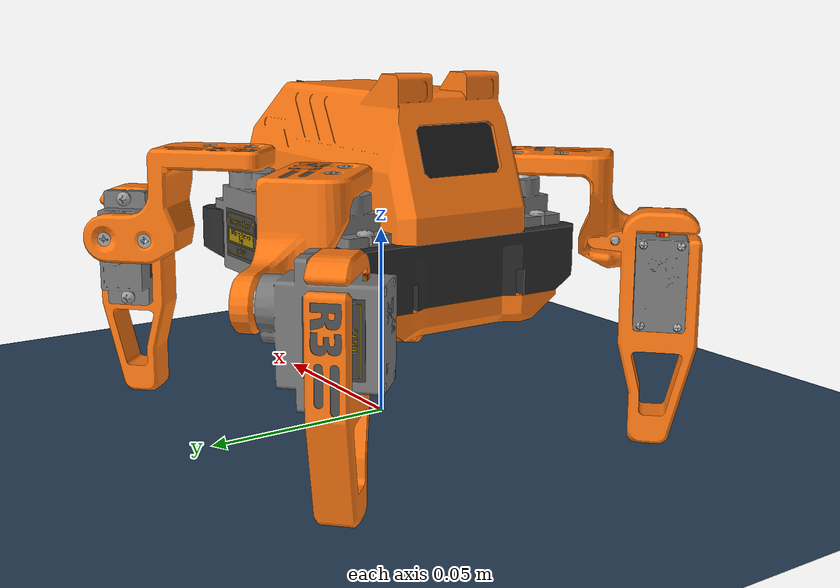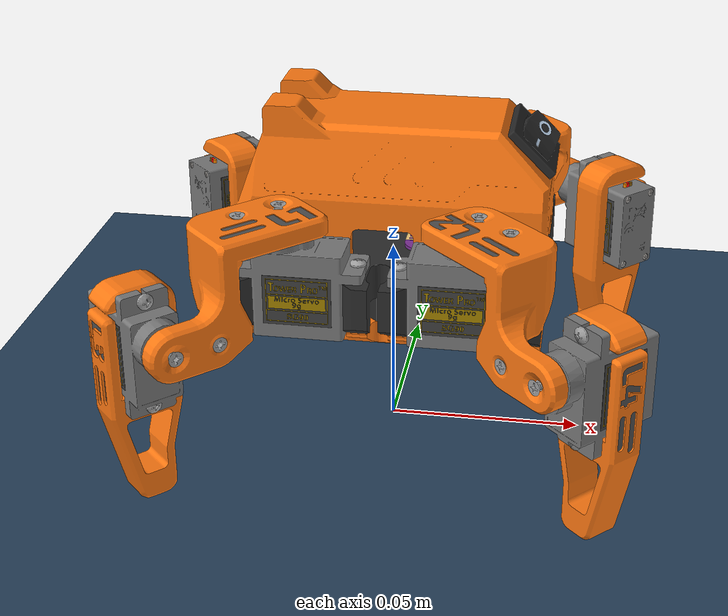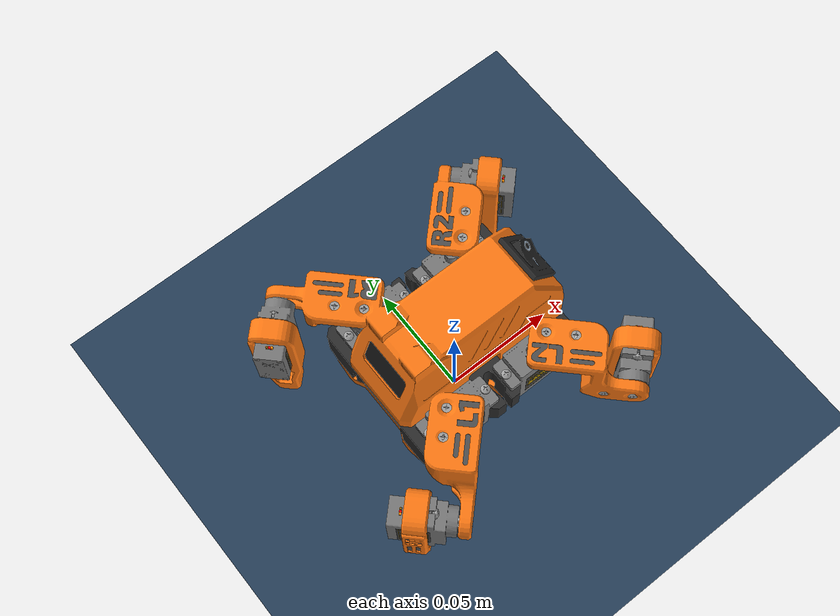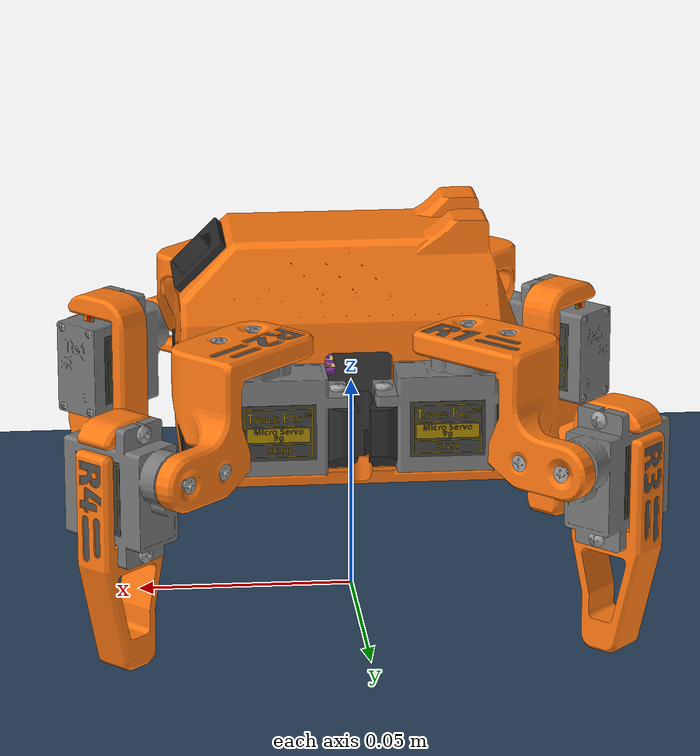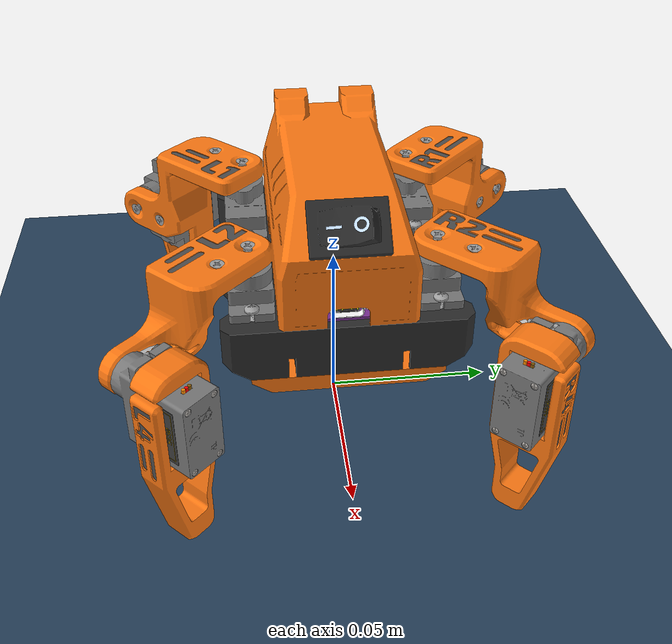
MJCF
<!-- Viewer scene. Meshes are coloured parts of the Sesame STEP tessellation. -->
<mujoco model="scene_viewer_sesame">
  <compiler angle="radian" meshdir="parts"/>
  <visual>
    <headlight diffuse="0.6 0.6 0.6" ambient="0.3 0.3 0.3" specular="0 0 0"/>
    <rgba haze="0.15 0.25 0.35 1"/>
    <global azimuth="160" elevation="-20" offwidth="1600" offheight="1200"/>
  </visual>
  <asset>
    <texture type="skybox" builtin="gradient" rgb1="0.3 0.5 0.7" rgb2="0 0 0" width="512" height="3072"/>
    <texture type="2d" name="groundplane" builtin="checker" mark="edge" rgb1="0.2 0.3 0.4" rgb2="0.1 0.2 0.3" markrgb="0.8 0.8 0.8" width="300" height="300"/>
    <material name="groundplane" texture="groundplane" texuniform="true" texrepeat="5 5" reflectance="0.2"/>
    <mesh name="part_00" inertia="shell" file="part_00.stl"/>
    <mesh name="part_01" inertia="shell" file="part_01.stl"/>
    <mesh name="part_02" inertia="shell" file="part_02.stl"/>
    <mesh name="part_03" inertia="shell" file="part_03.stl"/>
    <mesh name="part_04" inertia="shell" file="part_04.stl"/>
    <mesh name="part_05" inertia="shell" file="part_05.stl"/>
    <mesh name="part_06" inertia="shell" file="part_06.stl"/>
    <mesh name="part_07" inertia="shell" file="part_07.stl"/>
    <mesh name="part_08" inertia="shell" file="part_08.stl"/>
    <mesh name="part_09" inertia="shell" file="part_09.stl"/>
    <mesh name="part_10" inertia="shell" file="part_10.stl"/>
    <mesh name="part_11" inertia="shell" file="part_11.stl"/>
    <mesh name="part_12" inertia="shell" file="part_12.stl"/>
    <mesh name="part_13" inertia="shell" file="part_13.stl"/>
    <mesh name="part_14" inertia="shell" file="part_14.stl"/>
    <mesh name="part_15" inertia="shell" file="part_15.stl"/>
    <mesh name="part_16" inertia="shell" file="part_16.stl"/>
    <mesh name="part_17" inertia="shell" file="part_17.stl"/>
    <mesh name="part_18" inertia="shell" file="part_18.stl"/>
    <mesh name="part_19" inertia="shell" file="part_19.stl"/>
    <mesh name="part_20" inertia="shell" file="part_20.stl"/>
    <mesh name="part_21" inertia="shell" file="part_21.stl"/>
    <mesh name="part_22" inertia="shell" file="part_22.stl"/>
    <mesh name="part_23" inertia="shell" file="part_23.stl"/>
    <mesh name="part_24" inertia="shell" file="part_24.stl"/>
    <mesh name="part_25" inertia="shell" file="part_25.stl"/>
    <mesh name="part_26" inertia="shell" file="part_26.stl"/>
    <mesh name="part_27" inertia="shell" file="part_27.stl"/>
    <mesh name="part_28" inertia="shell" file="part_28.stl"/>
    <mesh name="part_29" inertia="shell" file="part_29.stl"/>
    <mesh name="part_30" inertia="shell" file="part_30.stl"/>
    <mesh name="part_31" inertia="shell" file="part_31.stl"/>
    <mesh name="part_32" inertia="shell" file="part_32.stl"/>
    <mesh name="part_33" inertia="shell" file="part_33.stl"/>
    <mesh name="part_34" inertia="shell" file="part_34.stl"/>
    <mesh name="part_35" inertia="shell" file="part_35.stl"/>
    <mesh name="part_36" inertia="shell" file="part_36.stl"/>
    <mesh name="part_37" inertia="shell" file="part_37.stl"/>
    <mesh name="part_38" inertia="shell" file="part_38.stl"/>
    <mesh name="part_39" inertia="shell" file="part_39.stl"/>
    <mesh name="part_40" inertia="shell" file="part_40.stl"/>
    <mesh name="part_41" inertia="shell" file="part_41.stl"/>
    <mesh name="part_42" inertia="shell" file="part_42.stl"/>
    <mesh name="part_43" inertia="shell" file="part_43.stl"/>
    <mesh name="part_44" inertia="shell" file="part_44.stl"/>
    <mesh name="part_45" inertia="shell" file="part_45.stl"/>
    <mesh name="part_46" inertia="shell" file="part_46.stl"/>
    <mesh name="part_47" inertia="shell" file="part_47.stl"/>
    <mesh name="part_48" inertia="shell" file="part_48.stl"/>
    <mesh name="part_49" inertia="shell" file="part_49.stl"/>
    <mesh name="part_50" inertia="shell" file="part_50.stl"/>
  </asset>
  <worldbody>
    <light pos="0 0 3.5" dir="0 0 -1" directional="true"/>
    <geom name="floor" size="0 0 0.05" type="plane" material="groundplane"/>
    <body name="sesame" pos="-0.0256 0.0024 0.0318" quat="0.707106781187 0.707106781187 0 0">
      <geom type="mesh" mesh="part_00" rgba="0.6275 0.6275 0.6275 1" contype="0" conaffinity="0" group="1"/>
      <geom type="mesh" mesh="part_01" rgba="0.4745 0.4745 0.4745 1" contype="0" conaffinity="0" group="1"/>
      <geom type="mesh" mesh="part_02" rgba="1.0000 1.0000 1.0000 1" contype="0" conaffinity="0" group="1"/>
      <geom type="mesh" mesh="part_03" rgba="1.0000 0.4745 0.0745 1" contype="0" conaffinity="0" group="1"/>
      <geom type="mesh" mesh="part_04" rgba="0.2510 0.2510 0.2510 1" contype="0" conaffinity="0" group="1"/>
      <geom type="mesh" mesh="part_05" rgba="0.6471 0.5176 0.0000 1" contype="0" conaffinity="0" group="1"/>
      <geom type="mesh" mesh="part_06" rgba="0.9647 0.9647 0.9529 1" contype="0" conaffinity="0" group="1"/>
      <geom type="mesh" mesh="part_07" rgba="0.1569 0.1569 0.1569 1" contype="0" conaffinity="0" group="1"/>
      <geom type="mesh" mesh="part_08" rgba="0.7765 0.7569 0.7373 1" contype="0" conaffinity="0" group="1"/>
      <geom type="mesh" mesh="part_09" rgba="0.9529 0.7961 0.4863 1" contype="0" conaffinity="0" group="1"/>
      <geom type="mesh" mesh="part_10" rgba="0.7490 0.7490 0.7490 1" contype="0" conaffinity="0" group="1"/>
      <geom type="mesh" mesh="part_11" rgba="0.1725 0.1725 0.1725 1" contype="0" conaffinity="0" group="1"/>
      <geom type="mesh" mesh="part_12" rgba="0.0392 0.0392 0.0392 1" contype="0" conaffinity="0" group="1"/>
      <geom type="mesh" mesh="part_13" rgba="0.7529 0.7529 0.7529 1" contype="0" conaffinity="0" group="1"/>
      <geom type="mesh" mesh="part_14" rgba="0.8000 0.8000 0.8000 1" contype="0" conaffinity="0" group="1"/>
      <geom type="mesh" mesh="part_15" rgba="0.4902 0.1922 0.5922 1" contype="0" conaffinity="0" group="1"/>
      <geom type="mesh" mesh="part_16" rgba="0.6902 0.6118 0.5294 1" contype="0" conaffinity="0" group="1"/>
      <geom type="mesh" mesh="part_17" rgba="1.0000 1.0000 0.0000 1" contype="0" conaffinity="0" group="1"/>
      <geom type="mesh" mesh="part_18" rgba="0.6431 0.6157 0.6000 1" contype="0" conaffinity="0" group="1"/>
      <geom type="mesh" mesh="part_19" rgba="0.7961 0.8235 0.9373 1" contype="0" conaffinity="0" group="1"/>
      <geom type="mesh" mesh="part_20" rgba="0.9098 0.9098 0.9098 1" contype="0" conaffinity="0" group="1"/>
      <geom type="mesh" mesh="part_21" rgba="0.1412 0.1412 0.1412 1" contype="0" conaffinity="0" group="1"/>
      <geom type="mesh" mesh="part_22" rgba="0.9098 0.5725 0.1647 1" contype="0" conaffinity="0" group="1"/>
      <geom type="mesh" mesh="part_23" rgba="0.3098 0.3098 0.3098 1" contype="0" conaffinity="0" group="1"/>
      <geom type="mesh" mesh="part_24" rgba="0.8980 0.9176 0.9294 1" contype="0" conaffinity="0" group="1"/>
      <geom type="mesh" mesh="part_25" rgba="0.0941 0.0941 0.0941 1" contype="0" conaffinity="0" group="1"/>
      <geom type="mesh" mesh="part_26" rgba="0.0039 0.1686 0.5765 1" contype="0" conaffinity="0" group="1"/>
      <geom type="mesh" mesh="part_27" rgba="0.8157 0.8157 0.8157 1" contype="0" conaffinity="0" group="1"/>
      <geom type="mesh" mesh="part_28" rgba="0.7686 0.7686 0.7686 1" contype="0" conaffinity="0" group="1"/>
      <geom type="mesh" mesh="part_29" rgba="0.6392 0.6667 0.6784 1" contype="0" conaffinity="0" group="1"/>
      <geom type="mesh" mesh="part_30" rgba="1.0000 0.5490 0.0000 1" contype="0" conaffinity="0" group="1"/>
      <geom type="mesh" mesh="part_31" rgba="1.0000 0.0000 0.0000 1" contype="0" conaffinity="0" group="1"/>
      <geom type="mesh" mesh="part_32" rgba="0.5490 0.3608 0.0314 1" contype="0" conaffinity="0" group="1"/>
      <geom type="mesh" mesh="part_33" rgba="0.2980 0.2980 0.2980 1" contype="0" conaffinity="0" group="1"/>
      <geom type="mesh" mesh="part_34" rgba="0.6510 0.4863 0.0196 1" contype="0" conaffinity="0" group="1"/>
      <geom type="mesh" mesh="part_35" rgba="0.0000 0.0000 1.0000 1" contype="0" conaffinity="0" group="1"/>
      <geom type="mesh" mesh="part_36" rgba="0.0824 0.0824 0.0824 1" contype="0" conaffinity="0" group="1"/>
      <geom type="mesh" mesh="part_37" rgba="0.0980 0.0980 0.0980 1" contype="0" conaffinity="0" group="1"/>
      <geom type="mesh" mesh="part_38" rgba="0.6471 0.6196 0.5882 1" contype="0" conaffinity="0" group="1"/>
      <geom type="mesh" mesh="part_39" rgba="0.8000 0.8980 1.0000 1" contype="0" conaffinity="0" group="1"/>
      <geom type="mesh" mesh="part_40" rgba="0.9569 0.8980 0.6549 1" contype="0" conaffinity="0" group="1"/>
      <geom type="mesh" mesh="part_41" rgba="0.7020 0.7020 0.7020 1" contype="0" conaffinity="0" group="1"/>
      <geom type="mesh" mesh="part_42" rgba="0.7922 0.8196 0.9333 1" contype="0" conaffinity="0" group="1"/>
      <geom type="mesh" mesh="part_43" rgba="0.6588 0.5098 0.0588 1" contype="0" conaffinity="0" group="1"/>
      <geom type="mesh" mesh="part_44" rgba="0.2000 0.2000 0.2000 1" contype="0" conaffinity="0" group="1"/>
      <geom type="mesh" mesh="part_45" rgba="1.0000 0.9216 0.7804 1" contype="0" conaffinity="0" group="1"/>
      <geom type="mesh" mesh="part_46" rgba="1.0000 0.5020 0.0000 1" contype="0" conaffinity="0" group="1"/>
      <geom type="mesh" mesh="part_47" rgba="0.3490 0.5843 0.8549 1" contype="0" conaffinity="0" group="1"/>
      <geom type="mesh" mesh="part_48" rgba="0.6196 0.4078 0.2000 1" contype="0" conaffinity="0" group="1"/>
      <geom type="mesh" mesh="part_49" rgba="0.0078 0.2392 0.8235 1" contype="0" conaffinity="0" group="1"/>
      <geom type="mesh" mesh="part_50" rgba="0.0000 0.0000 0.0000 1" contype="0" conaffinity="0" group="1"/>
    </body>
  </worldbody>
</mujoco>
